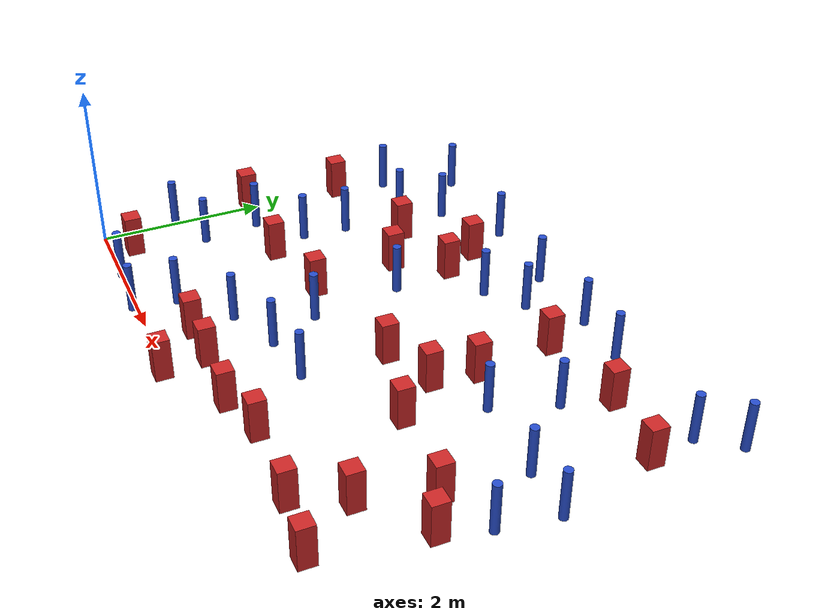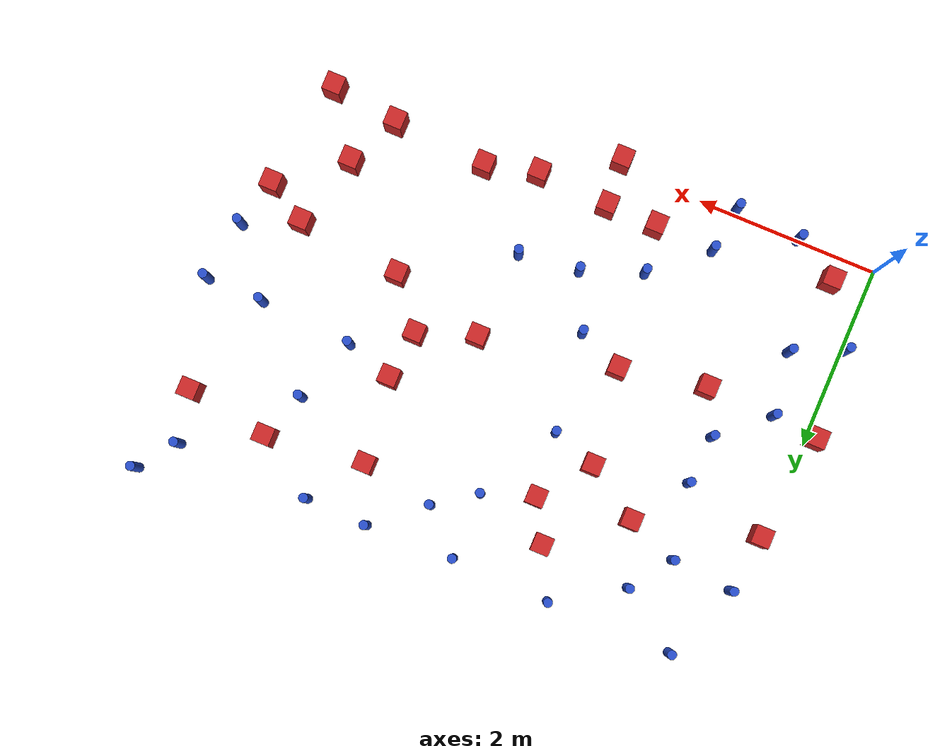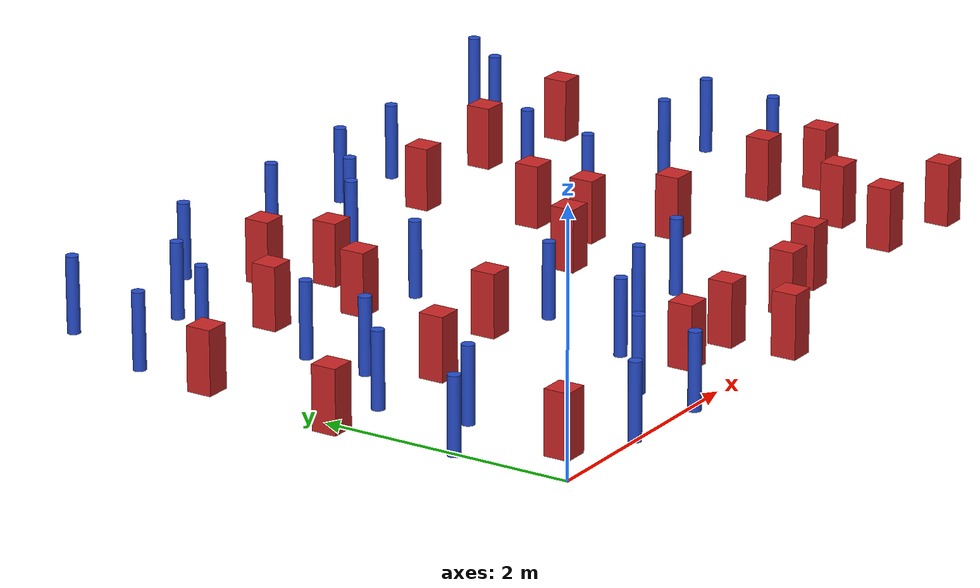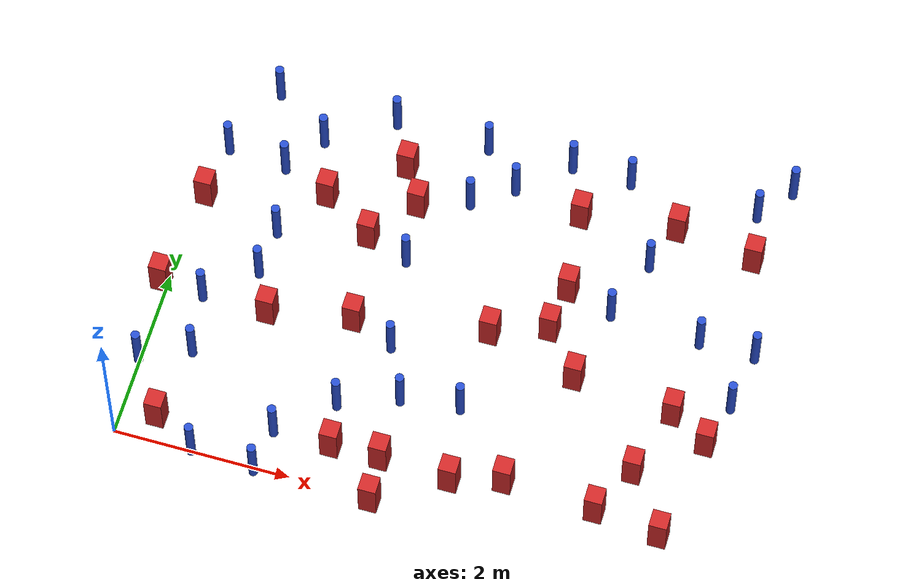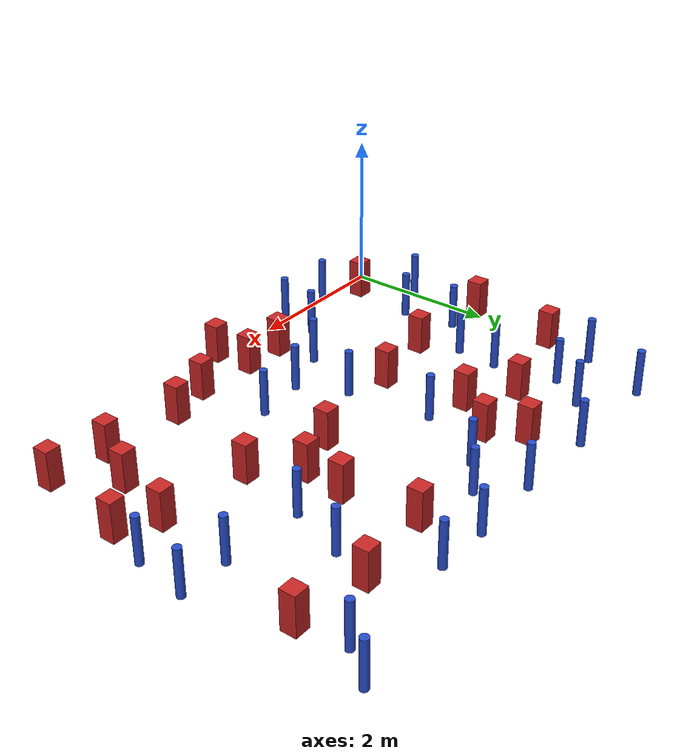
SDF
<sdf version="1.6">
 <model name="dense_70">
  <model name="square_post_obstacle1">
   <static>true</static>
   <pose>5.80485154844 1.86248550095 8.22691968438e-08 7.2212513382e-06 -7.54495500217e-07 2.29674213826e-05</pose>
   <link name="link">
    <pose>0 0 0.25 0 -0 0</pose>
    <inertial>
     <mass>100</mass>
     <inertia>
      <ixx>0.166667</ixx>
      <ixy>0</ixy>
      <ixz>0</ixz>
      <iyy>0.166667</iyy>
      <iyz>0</iyz>
      <izz>0.166667</izz>
     </inertia>
    </inertial>
    <collision name="collision"><geometry><box><size>.2 .2 .5</size></box></geometry></collision>
    <visual name="visual">
     <geometry><box><size>.2 .2 .5</size></box></geometry>
     <material>
      <script><name>Gazebo/Red</name><uri>file://media/materials/scripts/gazebo.material</uri></script>
     </material>
    </visual>
   </link>
  </model>
  <model name="pole_obstacle6">
   <static>true</static>
   <pose>1.87166272618 4.55720041785 2.88873142074e-08 -9.90536689852e-09 4.60219948989e-07 -1.2096599496e-07</pose>
   <link name="link">
    <pose>0 0 0.3 0 -0 0</pose>
    <inertial>
     <mass>1</mass>
     <inertia><ixx>0.145833</ixx><ixy>0</ixy><ixz>0</ixz><iyy>0.145833</iyy><iyz>0</iyz><izz>0.125</izz></inertia>
    </inertial>
    <collision name="collision">
     <geometry><cylinder><radius>0.05</radius><length>.6</length></cylinder></geometry>
    </collision>
    <visual name="visual">
     <geometry><cylinder><radius>0.05</radius><length>.6</length></cylinder></geometry>
     <material>
      <script><name>Gazebo/Blue</name><uri>file://media/materials/scripts/gazebo.material</uri></script>
     </material>
    </visual>
   </link>
  </model>
  <model name="pole_obstacle11">
   <static>true</static>
   <pose>2.61440782523 1.80878692361 2.88873142074e-08 -9.90536689395e-09 4.60219949e-07 -1.20965994953e-07</pose>
   <link name="link">
    <pose>0 0 0.3 0 -0 0</pose>
    <inertial>
     <mass>1</mass>
     <inertia><ixx>0.145833</ixx><ixy>0</ixy><ixz>0</ixz><iyy>0.145833</iyy><iyz>0</iyz><izz>0.125</izz></inertia>
    </inertial>
    <collision name="collision">
     <geometry><cylinder><radius>0.05</radius><length>.6</length></cylinder></geometry>
    </collision>
    <visual name="visual">
     <geometry><cylinder><radius>0.05</radius><length>.6</length></cylinder></geometry>
     <material>
      <script><name>Gazebo/Blue</name><uri>file://media/materials/scripts/gazebo.material</uri></script>
     </material>
    </visual>
   </link>
  </model>
  <model name="pole_obstacle16">
   <static>true</static>
   <pose>1.67860031516 0.463733786969 2.88873142074e-08 -9.90536689788e-09 4.6021994899e-07 -1.2096599496e-07</pose>
   <link name="link">
    <pose>0 0 0.3 0 -0 0</pose>
    <inertial>
     <mass>1</mass>
     <inertia><ixx>0.145833</ixx><ixy>0</ixy><ixz>0</ixz><iyy>0.145833</iyy><iyz>0</iyz><izz>0.125</izz></inertia>
    </inertial>
    <collision name="collision">
     <geometry><cylinder><radius>0.05</radius><length>.6</length></cylinder></geometry>
    </collision>
    <visual name="visual">
     <geometry><cylinder><radius>0.05</radius><length>.6</length></cylinder></geometry>
     <material>
      <script><name>Gazebo/Blue</name><uri>file://media/materials/scripts/gazebo.material</uri></script>
     </material>
    </visual>
   </link>
  </model>
  <model name="square_post_obstacle16">
   <static>true</static>
   <pose>1.39110884034 3.42909888853 8.22691968438e-08 7.2212513382e-06 -7.54495500217e-07 2.29674213826e-05</pose>
   <link name="link">
    <pose>0 0 0.25 0 -0 0</pose>
    <inertial>
     <mass>100</mass>
     <inertia>
      <ixx>0.166667</ixx>
      <ixy>0</ixy>
      <ixz>0</ixz>
      <iyy>0.166667</iyy>
      <iyz>0</iyz>
      <izz>0.166667</izz>
     </inertia>
    </inertial>
    <collision name="collision"><geometry><box><size>.2 .2 .5</size></box></geometry></collision>
    <visual name="visual">
     <geometry><box><size>.2 .2 .5</size></box></geometry>
     <material>
      <script><name>Gazebo/Red</name><uri>file://media/materials/scripts/gazebo.material</uri></script>
     </material>
    </visual>
   </link>
  </model>
  <model name="pole_obstacle25">
   <static>true</static>
   <pose>6.49631645876 2.79729808438 2.88873142074e-08 -9.90536690245e-09 4.6021994898e-07 -1.20965994966e-07</pose>
   <link name="link">
    <pose>0 0 0.3 0 -0 0</pose>
    <inertial>
     <mass>1</mass>
     <inertia><ixx>0.145833</ixx><ixy>0</ixy><ixz>0</ixz><iyy>0.145833</iyy><iyz>0</iyz><izz>0.125</izz></inertia>
    </inertial>
    <collision name="collision">
     <geometry><cylinder><radius>0.05</radius><length>.6</length></cylinder></geometry>
    </collision>
    <visual name="visual">
     <geometry><cylinder><radius>0.05</radius><length>.6</length></cylinder></geometry>
     <material>
      <script><name>Gazebo/Blue</name><uri>file://media/materials/scripts/gazebo.material</uri></script>
     </material>
    </visual>
   </link>
  </model>
  <model name="square_post_obstacle26">
   <static>true</static>
   <pose>4.25897662383 0.563208085032 8.22691968438e-08 7.2212513382e-06 -7.54495500217e-07 2.29674213826e-05</pose>
   <link name="link">
    <pose>0 0 0.25 0 -0 0</pose>
    <inertial>
     <mass>100</mass>
     <inertia>
      <ixx>0.166667</ixx>
      <ixy>0</ixy>
      <ixz>0</ixz>
      <iyy>0.166667</iyy>
      <iyz>0</iyz>
      <izz>0.166667</izz>
     </inertia>
    </inertial>
    <collision name="collision"><geometry><box><size>.2 .2 .5</size></box></geometry></collision>
    <visual name="visual">
     <geometry><box><size>.2 .2 .5</size></box></geometry>
     <material>
      <script><name>Gazebo/Red</name><uri>file://media/materials/scripts/gazebo.material</uri></script>
     </material>
    </visual>
   </link>
  </model>
  <model name="square_post_obstacle28">
   <static>true</static>
   <pose>0.403937300978 0.281757265774 8.22691968438e-08 7.2212513382e-06 -7.54495500217e-07 2.29674213826e-05</pose>
   <link name="link">
    <pose>0 0 0.25 0 -0 0</pose>
    <inertial>
     <mass>100</mass>
     <inertia>
      <ixx>0.166667</ixx>
      <ixy>0</ixy>
      <ixz>0</ixz>
      <iyy>0.166667</iyy>
      <iyz>0</iyz>
      <izz>0.166667</izz>
     </inertia>
    </inertial>
    <collision name="collision"><geometry><box><size>.2 .2 .5</size></box></geometry></collision>
    <visual name="visual">
     <geometry><box><size>.2 .2 .5</size></box></geometry>
     <material>
      <script><name>Gazebo/Red</name><uri>file://media/materials/scripts/gazebo.material</uri></script>
     </material>
    </visual>
   </link>
  </model>
  <model name="pole_obstacle36">
   <static>true</static>
   <pose>0.980874277172 2.83846772094 2.88873142074e-08 -9.90536689802e-09 4.6021994899e-07 -1.2096599496e-07</pose>
   <link name="link">
    <pose>0 0 0.3 0 -0 0</pose>
    <inertial>
     <mass>1</mass>
     <inertia><ixx>0.145833</ixx><ixy>0</ixy><ixz>0</ixz><iyy>0.145833</iyy><iyz>0</iyz><izz>0.125</izz></inertia>
    </inertial>
    <collision name="collision">
     <geometry><cylinder><radius>0.05</radius><length>.6</length></cylinder></geometry>
    </collision>
    <visual name="visual">
     <geometry><cylinder><radius>0.05</radius><length>.6</length></cylinder></geometry>
     <material>
      <script><name>Gazebo/Blue</name><uri>file://media/materials/scripts/gazebo.material</uri></script>
     </material>
    </visual>
   </link>
  </model>
  <model name="pole_obstacle37">
   <static>true</static>
   <pose>3.93220554547 4.55537312214 2.88873142074e-08 -9.90536689859e-09 4.60219948989e-07 -1.20965994961e-07</pose>
   <link name="link">
    <pose>0 0 0.3 0 -0 0</pose>
    <inertial>
     <mass>1</mass>
     <inertia><ixx>0.145833</ixx><ixy>0</ixy><ixz>0</ixz><iyy>0.145833</iyy><iyz>0</iyz><izz>0.125</izz></inertia>
    </inertial>
    <collision name="collision">
     <geometry><cylinder><radius>0.05</radius><length>.6</length></cylinder></geometry>
    </collision>
    <visual name="visual">
     <geometry><cylinder><radius>0.05</radius><length>.6</length></cylinder></geometry>
     <material>
      <script><name>Gazebo/Blue</name><uri>file://media/materials/scripts/gazebo.material</uri></script>
     </material>
    </visual>
   </link>
  </model>
  <model name="pole_obstacle38">
   <static>true</static>
   <pose>6.3942815201 4.9247850995 2.88873142074e-08 -9.90536690842e-09 4.60219948965e-07 -1.20965994976e-07</pose>
   <link name="link">
    <pose>0 0 0.3 0 -0 0</pose>
    <inertial>
     <mass>1</mass>
     <inertia><ixx>0.145833</ixx><ixy>0</ixy><ixz>0</ixz><iyy>0.145833</iyy><iyz>0</iyz><izz>0.125</izz></inertia>
    </inertial>
    <collision name="collision">
     <geometry><cylinder><radius>0.05</radius><length>.6</length></cylinder></geometry>
    </collision>
    <visual name="visual">
     <geometry><cylinder><radius>0.05</radius><length>.6</length></cylinder></geometry>
     <material>
      <script><name>Gazebo/Blue</name><uri>file://media/materials/scripts/gazebo.material</uri></script>
     </material>
    </visual>
   </link>
  </model>
  <model name="pole_obstacle46">
   <static>true</static>
   <pose>0.426810266464 1.84129543775 2.88873142074e-08 -9.90536689905e-09 4.60219948988e-07 -1.2096599496e-07</pose>
   <link name="link">
    <pose>0 0 0.3 0 -0 0</pose>
    <inertial>
     <mass>1</mass>
     <inertia><ixx>0.145833</ixx><ixy>0</ixy><ixz>0</ixz><iyy>0.145833</iyy><iyz>0</iyz><izz>0.125</izz></inertia>
    </inertial>
    <collision name="collision">
     <geometry><cylinder><radius>0.05</radius><length>.6</length></cylinder></geometry>
    </collision>
    <visual name="visual">
     <geometry><cylinder><radius>0.05</radius><length>.6</length></cylinder></geometry>
     <material>
      <script><name>Gazebo/Blue</name><uri>file://media/materials/scripts/gazebo.material</uri></script>
     </material>
    </visual>
   </link>
  </model>
  <model name="pole_obstacle55">
   <static>true</static>
   <pose>1.60711773701 -0.0452738911862 2.88873142074e-08 -9.90536689813e-09 4.6021994899e-07 -1.20965994959e-07</pose>
   <link name="link">
    <pose>0 0 0.3 0 -0 0</pose>
    <inertial>
     <mass>1</mass>
     <inertia><ixx>0.145833</ixx><ixy>0</ixy><ixz>0</ixz><iyy>0.145833</iyy><iyz>0</iyz><izz>0.125</izz></inertia>
    </inertial>
    <collision name="collision">
     <geometry><cylinder><radius>0.05</radius><length>.6</length></cylinder></geometry>
    </collision>
    <visual name="visual">
     <geometry><cylinder><radius>0.05</radius><length>.6</length></cylinder></geometry>
     <material>
      <script><name>Gazebo/Blue</name><uri>file://media/materials/scripts/gazebo.material</uri></script>
     </material>
    </visual>
   </link>
  </model>
  <model name="square_post_obstacle47">
   <static>true</static>
   <pose>5.29792968318 0.500472551045 8.22691968438e-08 7.2212513382e-06 -7.54495500217e-07 2.29674213826e-05</pose>
   <link name="link">
    <pose>0 0 0.25 0 -0 0</pose>
    <inertial>
     <mass>100</mass>
     <inertia>
      <ixx>0.166667</ixx>
      <ixy>0</ixy>
      <ixz>0</ixz>
      <iyy>0.166667</iyy>
      <iyz>0</iyz>
      <izz>0.166667</izz>
     </inertia>
    </inertial>
    <collision name="collision"><geometry><box><size>.2 .2 .5</size></box></geometry></collision>
    <visual name="visual">
     <geometry><box><size>.2 .2 .5</size></box></geometry>
     <material>
      <script><name>Gazebo/Red</name><uri>file://media/materials/scripts/gazebo.material</uri></script>
     </material>
    </visual>
   </link>
  </model>
  <model name="pole_obstacle65">
   <static>true</static>
   <pose>0.528404406386 1.1504723497 2.88873142074e-08 -9.90536690151e-09 4.60219948982e-07 -1.20965994965e-07</pose>
   <link name="link">
    <pose>0 0 0.3 0 -0 0</pose>
    <inertial>
     <mass>1</mass>
     <inertia><ixx>0.145833</ixx><ixy>0</ixy><ixz>0</ixz><iyy>0.145833</iyy><iyz>0</iyz><izz>0.125</izz></inertia>
    </inertial>
    <collision name="collision">
     <geometry><cylinder><radius>0.05</radius><length>.6</length></cylinder></geometry>
    </collision>
    <visual name="visual">
     <geometry><cylinder><radius>0.05</radius><length>.6</length></cylinder></geometry>
     <material>
      <script><name>Gazebo/Blue</name><uri>file://media/materials/scripts/gazebo.material</uri></script>
     </material>
    </visual>
   </link>
  </model>
  <model name="pole_obstacle70">
   <static>true</static>
   <pose>6.08183507549 4.52303860356 2.88873142074e-08 -9.90536690842e-09 4.60219948965e-07 -1.20965994976e-07</pose>
   <link name="link">
    <pose>0 0 0.3 0 -0 0</pose>
    <inertial>
     <mass>1</mass>
     <inertia><ixx>0.145833</ixx><ixy>0</ixy><ixz>0</ixz><iyy>0.145833</iyy><iyz>0</iyz><izz>0.125</izz></inertia>
    </inertial>
    <collision name="collision">
     <geometry><cylinder><radius>0.05</radius><length>.6</length></cylinder></geometry>
    </collision>
    <visual name="visual">
     <geometry><cylinder><radius>0.05</radius><length>.6</length></cylinder></geometry>
     <material>
      <script><name>Gazebo/Blue</name><uri>file://media/materials/scripts/gazebo.material</uri></script>
     </material>
    </visual>
   </link>
  </model>
  <model name="square_post_obstacle60">
   <static>true</static>
   <pose>1.98158617814 3.0543041788 8.22691968438e-08 7.2212513382e-06 -7.54495500217e-07 2.29674213826e-05</pose>
   <link name="link">
    <pose>0 0 0.25 0 -0 0</pose>
    <inertial>
     <mass>100</mass>
     <inertia>
      <ixx>0.166667</ixx>
      <ixy>0</ixy>
      <ixz>0</ixz>
      <iyy>0.166667</iyy>
      <iyz>0</iyz>
      <izz>0.166667</izz>
     </inertia>
    </inertial>
    <collision name="collision"><geometry><box><size>.2 .2 .5</size></box></geometry></collision>
    <visual name="visual">
     <geometry><box><size>.2 .2 .5</size></box></geometry>
     <material>
      <script><name>Gazebo/Red</name><uri>file://media/materials/scripts/gazebo.material</uri></script>
     </material>
    </visual>
   </link>
  </model>
  <model name="square_post_obstacle61">
   <static>true</static>
   <pose>4.30544268135 3.02421922106 8.22691968438e-08 7.2212513382e-06 -7.54495500217e-07 2.29674213826e-05</pose>
   <link name="link">
    <pose>0 0 0.25 0 -0 0</pose>
    <inertial>
     <mass>100</mass>
     <inertia>
      <ixx>0.166667</ixx>
      <ixy>0</ixy>
      <ixz>0</ixz>
      <iyy>0.166667</iyy>
      <iyz>0</iyz>
      <izz>0.166667</izz>
     </inertia>
    </inertial>
    <collision name="collision"><geometry><box><size>.2 .2 .5</size></box></geometry></collision>
    <visual name="visual">
     <geometry><box><size>.2 .2 .5</size></box></geometry>
     <material>
      <script><name>Gazebo/Red</name><uri>file://media/materials/scripts/gazebo.material</uri></script>
     </material>
    </visual>
   </link>
  </model>
  <model name="pole_obstacle71">
   <static>true</static>
   <pose>1.14897890635 4.10012739988 2.88873142074e-08 -9.90536689852e-09 4.60219948989e-07 -1.2096599496e-07</pose>
   <link name="link">
    <pose>0 0 0.3 0 -0 0</pose>
    <inertial>
     <mass>1</mass>
     <inertia><ixx>0.145833</ixx><ixy>0</ixy><ixz>0</ixz><iyy>0.145833</iyy><iyz>0</iyz><izz>0.125</izz></inertia>
    </inertial>
    <collision name="collision">
     <geometry><cylinder><radius>0.05</radius><length>.6</length></cylinder></geometry>
    </collision>
    <visual name="visual">
     <geometry><cylinder><radius>0.05</radius><length>.6</length></cylinder></geometry>
     <material>
      <script><name>Gazebo/Blue</name><uri>file://media/materials/scripts/gazebo.material</uri></script>
     </material>
    </visual>
   </link>
  </model>
  <model name="pole_obstacle76">
   <static>true</static>
   <pose>4.61547871797 4.53841228429 2.88873142074e-08 -9.90536690842e-09 4.60219948965e-07 -1.20965994976e-07</pose>
   <link name="link">
    <pose>0 0 0.3 0 -0 0</pose>
    <inertial>
     <mass>1</mass>
     <inertia><ixx>0.145833</ixx><ixy>0</ixy><ixz>0</ixz><iyy>0.145833</iyy><iyz>0</iyz><izz>0.125</izz></inertia>
    </inertial>
    <collision name="collision">
     <geometry><cylinder><radius>0.05</radius><length>.6</length></cylinder></geometry>
    </collision>
    <visual name="visual">
     <geometry><cylinder><radius>0.05</radius><length>.6</length></cylinder></geometry>
     <material>
      <script><name>Gazebo/Blue</name><uri>file://media/materials/scripts/gazebo.material</uri></script>
     </material>
    </visual>
   </link>
  </model>
  <model name="pole_obstacle77">
   <static>true</static>
   <pose>2.95366409807 3.78678568056 2.88873142074e-08 -9.90536690232e-09 4.6021994898e-07 -1.20965994968e-07</pose>
   <link name="link">
    <pose>0 0 0.3 0 -0 0</pose>
    <inertial>
     <mass>1</mass>
     <inertia><ixx>0.145833</ixx><ixy>0</ixy><ixz>0</ixz><iyy>0.145833</iyy><iyz>0</iyz><izz>0.125</izz></inertia>
    </inertial>
    <collision name="collision">
     <geometry><cylinder><radius>0.05</radius><length>.6</length></cylinder></geometry>
    </collision>
    <visual name="visual">
     <geometry><cylinder><radius>0.05</radius><length>.6</length></cylinder></geometry>
     <material>
      <script><name>Gazebo/Blue</name><uri>file://media/materials/scripts/gazebo.material</uri></script>
     </material>
    </visual>
   </link>
  </model>
  <model name="pole_obstacle81">
   <static>true</static>
   <pose>6.39610808806 2.12889983251 2.88873142074e-08 -9.90536690245e-09 4.6021994898e-07 -1.20965994966e-07</pose>
   <link name="link">
    <pose>0 0 0.3 0 -0 0</pose>
    <inertial>
     <mass>1</mass>
     <inertia><ixx>0.145833</ixx><ixy>0</ixy><ixz>0</ixz><iyy>0.145833</iyy><iyz>0</iyz><izz>0.125</izz></inertia>
    </inertial>
    <collision name="collision">
     <geometry><cylinder><radius>0.05</radius><length>.6</length></cylinder></geometry>
    </collision>
    <visual name="visual">
     <geometry><cylinder><radius>0.05</radius><length>.6</length></cylinder></geometry>
     <material>
      <script><name>Gazebo/Blue</name><uri>file://media/materials/scripts/gazebo.material</uri></script>
     </material>
    </visual>
   </link>
  </model>
  <model name="pole_obstacle84">
   <static>true</static>
   <pose>2.24804944506 0.963853311522 2.88873142074e-08 -9.90536689701e-09 4.60219948992e-07 -1.20965994959e-07</pose>
   <link name="link">
    <pose>0 0 0.3 0 -0 0</pose>
    <inertial>
     <mass>1</mass>
     <inertia><ixx>0.145833</ixx><ixy>0</ixy><ixz>0</ixz><iyy>0.145833</iyy><iyz>0</iyz><izz>0.125</izz></inertia>
    </inertial>
    <collision name="collision">
     <geometry><cylinder><radius>0.05</radius><length>.6</length></cylinder></geometry>
    </collision>
    <visual name="visual">
     <geometry><cylinder><radius>0.05</radius><length>.6</length></cylinder></geometry>
     <material>
      <script><name>Gazebo/Blue</name><uri>file://media/materials/scripts/gazebo.material</uri></script>
     </material>
    </visual>
   </link>
  </model>
  <model name="square_post_obstacle74">
   <static>true</static>
   <pose>2.9303197492 -0.0503939318438 8.22691968438e-08 7.2212513382e-06 -7.54495500217e-07 2.29674213826e-05</pose>
   <link name="link">
    <pose>0 0 0.25 0 -0 0</pose>
    <inertial>
     <mass>100</mass>
     <inertia>
      <ixx>0.166667</ixx>
      <ixy>0</ixy>
      <ixz>0</ixz>
      <iyy>0.166667</iyy>
      <iyz>0</iyz>
      <izz>0.166667</izz>
     </inertia>
    </inertial>
    <collision name="collision"><geometry><box><size>.2 .2 .5</size></box></geometry></collision>
    <visual name="visual">
     <geometry><box><size>.2 .2 .5</size></box></geometry>
     <material>
      <script><name>Gazebo/Red</name><uri>file://media/materials/scripts/gazebo.material</uri></script>
     </material>
    </visual>
   </link>
  </model>
  <model name="square_post_obstacle81">
   <static>true</static>
   <pose>6.18040757856 3.95391477961 8.22691968438e-08 7.2212513382e-06 -7.54495500217e-07 2.29674213826e-05</pose>
   <link name="link">
    <pose>0 0 0.25 0 -0 0</pose>
    <inertial>
     <mass>100</mass>
     <inertia>
      <ixx>0.166667</ixx>
      <ixy>0</ixy>
      <ixz>0</ixz>
      <iyy>0.166667</iyy>
      <iyz>0</iyz>
      <izz>0.166667</izz>
     </inertia>
    </inertial>
    <collision name="collision"><geometry><box><size>.2 .2 .5</size></box></geometry></collision>
    <visual name="visual">
     <geometry><box><size>.2 .2 .5</size></box></geometry>
     <material>
      <script><name>Gazebo/Red</name><uri>file://media/materials/scripts/gazebo.material</uri></script>
     </material>
    </visual>
   </link>
  </model>
  <model name="square_post_obstacle88">
   <static>true</static>
   <pose>2.3364033444 0.460191185488 8.22691968438e-08 7.2212513382e-06 -7.54495500217e-07 2.29674213826e-05</pose>
   <link name="link">
    <pose>0 0 0.25 0 -0 0</pose>
    <inertial>
     <mass>100</mass>
     <inertia>
      <ixx>0.166667</ixx>
      <ixy>0</ixy>
      <ixz>0</ixz>
      <iyy>0.166667</iyy>
      <iyz>0</iyz>
      <izz>0.166667</izz>
     </inertia>
    </inertial>
    <collision name="collision"><geometry><box><size>.2 .2 .5</size></box></geometry></collision>
    <visual name="visual">
     <geometry><box><size>.2 .2 .5</size></box></geometry>
     <material>
      <script><name>Gazebo/Red</name><uri>file://media/materials/scripts/gazebo.material</uri></script>
     </material>
    </visual>
   </link>
  </model>
  <model name="square_post_obstacle90">
   <static>true</static>
   <pose>2.12691441632 2.00725225635 8.22691968438e-08 7.2212513382e-06 -7.54495500217e-07 2.29674213826e-05</pose>
   <link name="link">
    <pose>0 0 0.25 0 -0 0</pose>
    <inertial>
     <mass>100</mass>
     <inertia>
      <ixx>0.166667</ixx>
      <ixy>0</ixy>
      <ixz>0</ixz>
      <iyy>0.166667</iyy>
      <iyz>0</iyz>
      <izz>0.166667</izz>
     </inertia>
    </inertial>
    <collision name="collision"><geometry><box><size>.2 .2 .5</size></box></geometry></collision>
    <visual name="visual">
     <geometry><box><size>.2 .2 .5</size></box></geometry>
     <material>
      <script><name>Gazebo/Red</name><uri>file://media/materials/scripts/gazebo.material</uri></script>
     </material>
    </visual>
   </link>
  </model>
  <model name="pole_obstacle101">
   <static>true</static>
   <pose>5.86614964058 2.80286822805 2.88873142074e-08 -9.90536690245e-09 4.6021994898e-07 -1.20965994966e-07</pose>
   <link name="link">
    <pose>0 0 0.3 0 -0 0</pose>
    <inertial>
     <mass>1</mass>
     <inertia><ixx>0.145833</ixx><ixy>0</ixy><ixz>0</ixz><iyy>0.145833</iyy><iyz>0</iyz><izz>0.125</izz></inertia>
    </inertial>
    <collision name="collision">
     <geometry><cylinder><radius>0.05</radius><length>.6</length></cylinder></geometry>
    </collision>
    <visual name="visual">
     <geometry><cylinder><radius>0.05</radius><length>.6</length></cylinder></geometry>
     <material>
      <script><name>Gazebo/Blue</name><uri>file://media/materials/scripts/gazebo.material</uri></script>
     </material>
    </visual>
   </link>
  </model>
  <model name="square_post_obstacle95">
   <static>true</static>
   <pose>4.2397135993 2.49239871041 8.22691968438e-08 7.2212513382e-06 -7.54495500217e-07 2.29674213826e-05</pose>
   <link name="link">
    <pose>0 0 0.25 0 -0 0</pose>
    <inertial>
     <mass>100</mass>
     <inertia>
      <ixx>0.166667</ixx>
      <ixy>0</ixy>
      <ixz>0</ixz>
      <iyy>0.166667</iyy>
      <iyz>0</iyz>
      <izz>0.166667</izz>
     </inertia>
    </inertial>
    <collision name="collision"><geometry><box><size>.2 .2 .5</size></box></geometry></collision>
    <visual name="visual">
     <geometry><box><size>.2 .2 .5</size></box></geometry>
     <material>
      <script><name>Gazebo/Red</name><uri>file://media/materials/scripts/gazebo.material</uri></script>
     </material>
    </visual>
   </link>
  </model>
  <model name="square_post_obstacle97">
   <static>true</static>
   <pose>2.40002460607 3.58926754957 8.22691968438e-08 7.2212513382e-06 -7.54495500217e-07 2.29674213826e-05</pose>
   <link name="link">
    <pose>0 0 0.25 0 -0 0</pose>
    <inertial>
     <mass>100</mass>
     <inertia>
      <ixx>0.166667</ixx>
      <ixy>0</ixy>
      <ixz>0</ixz>
      <iyy>0.166667</iyy>
      <iyz>0</iyz>
      <izz>0.166667</izz>
     </inertia>
    </inertial>
    <collision name="collision"><geometry><box><size>.2 .2 .5</size></box></geometry></collision>
    <visual name="visual">
     <geometry><box><size>.2 .2 .5</size></box></geometry>
     <material>
      <script><name>Gazebo/Red</name><uri>file://media/materials/scripts/gazebo.material</uri></script>
     </material>
    </visual>
   </link>
  </model>
  <model name="square_post_obstacle103">
   <static>true</static>
   <pose>0.0758553075731 3.07109637773 8.22691968438e-08 7.2212513382e-06 -7.54495500217e-07 2.29674213826e-05</pose>
   <link name="link">
    <pose>0 0 0.25 0 -0 0</pose>
    <inertial>
     <mass>100</mass>
     <inertia>
      <ixx>0.166667</ixx>
      <ixy>0</ixy>
      <ixz>0</ixz>
      <iyy>0.166667</iyy>
      <iyz>0</iyz>
      <izz>0.166667</izz>
     </inertia>
    </inertial>
    <collision name="collision"><geometry><box><size>.2 .2 .5</size></box></geometry></collision>
    <visual name="visual">
     <geometry><box><size>.2 .2 .5</size></box></geometry>
     <material>
      <script><name>Gazebo/Red</name><uri>file://media/materials/scripts/gazebo.material</uri></script>
     </material>
    </visual>
   </link>
  </model>
  <model name="pole_obstacle115">
   <static>true</static>
   <pose>3.39289770994 4.09941497682 2.88873142074e-08 -9.90536689859e-09 4.60219948989e-07 -1.20965994961e-07</pose>
   <link name="link">
    <pose>0 0 0.3 0 -0 0</pose>
    <inertial>
     <mass>1</mass>
     <inertia><ixx>0.145833</ixx><ixy>0</ixy><ixz>0</ixz><iyy>0.145833</iyy><iyz>0</iyz><izz>0.125</izz></inertia>
    </inertial>
    <collision name="collision">
     <geometry><cylinder><radius>0.05</radius><length>.6</length></cylinder></geometry>
    </collision>
    <visual name="visual">
     <geometry><cylinder><radius>0.05</radius><length>.6</length></cylinder></geometry>
     <material>
      <script><name>Gazebo/Blue</name><uri>file://media/materials/scripts/gazebo.material</uri></script>
     </material>
    </visual>
   </link>
  </model>
  <model name="pole_obstacle125">
   <static>true</static>
   <pose>0.8290730016 3.64934899208 2.88873142074e-08 -9.90536689636e-09 4.60219948994e-07 -1.20965994958e-07</pose>
   <link name="link">
    <pose>0 0 0.3 0 -0 0</pose>
    <inertial>
     <mass>1</mass>
     <inertia><ixx>0.145833</ixx><ixy>0</ixy><ixz>0</ixz><iyy>0.145833</iyy><iyz>0</iyz><izz>0.125</izz></inertia>
    </inertial>
    <collision name="collision">
     <geometry><cylinder><radius>0.05</radius><length>.6</length></cylinder></geometry>
    </collision>
    <visual name="visual">
     <geometry><cylinder><radius>0.05</radius><length>.6</length></cylinder></geometry>
     <material>
      <script><name>Gazebo/Blue</name><uri>file://media/materials/scripts/gazebo.material</uri></script>
     </material>
    </visual>
   </link>
  </model>
  <model name="pole_obstacle126">
   <static>true</static>
   <pose>3.56003813669 1.2931522656 2.88873142074e-08 -9.90536689395e-09 4.60219949e-07 -1.20965994953e-07</pose>
   <link name="link">
    <pose>0 0 0.3 0 -0 0</pose>
    <inertial>
     <mass>1</mass>
     <inertia><ixx>0.145833</ixx><ixy>0</ixy><ixz>0</ixz><iyy>0.145833</iyy><iyz>0</iyz><izz>0.125</izz></inertia>
    </inertial>
    <collision name="collision">
     <geometry><cylinder><radius>0.05</radius><length>.6</length></cylinder></geometry>
    </collision>
    <visual name="visual">
     <geometry><cylinder><radius>0.05</radius><length>.6</length></cylinder></geometry>
     <material>
      <script><name>Gazebo/Blue</name><uri>file://media/materials/scripts/gazebo.material</uri></script>
     </material>
    </visual>
   </link>
  </model>
  <model name="square_post_obstacle123">
   <static>true</static>
   <pose>4.65722926524 1.98467591924 8.22691968438e-08 7.2212513382e-06 -7.54495500217e-07 2.29674213826e-05</pose>
   <link name="link">
    <pose>0 0 0.25 0 -0 0</pose>
    <inertial>
     <mass>100</mass>
     <inertia>
      <ixx>0.166667</ixx>
      <ixy>0</ixy>
      <ixz>0</ixz>
      <iyy>0.166667</iyy>
      <iyz>0</iyz>
      <izz>0.166667</izz>
     </inertia>
    </inertial>
    <collision name="collision"><geometry><box><size>.2 .2 .5</size></box></geometry></collision>
    <visual name="visual">
     <geometry><box><size>.2 .2 .5</size></box></geometry>
     <material>
      <script><name>Gazebo/Red</name><uri>file://media/materials/scripts/gazebo.material</uri></script>
     </material>
    </visual>
   </link>
  </model>
  <model name="square_post_obstacle130">
   <static>true</static>
   <pose>4.19129608054 3.95977043679 8.22691968438e-08 7.2212513382e-06 -7.54495500217e-07 2.29674213826e-05</pose>
   <link name="link">
    <pose>0 0 0.25 0 -0 0</pose>
    <inertial>
     <mass>100</mass>
     <inertia>
      <ixx>0.166667</ixx>
      <ixy>0</ixy>
      <ixz>0</ixz>
      <iyy>0.166667</iyy>
      <iyz>0</iyz>
      <izz>0.166667</izz>
     </inertia>
    </inertial>
    <collision name="collision"><geometry><box><size>.2 .2 .5</size></box></geometry></collision>
    <visual name="visual">
     <geometry><box><size>.2 .2 .5</size></box></geometry>
     <material>
      <script><name>Gazebo/Red</name><uri>file://media/materials/scripts/gazebo.material</uri></script>
     </material>
    </visual>
   </link>
  </model>
  <model name="pole_obstacle136">
   <static>true</static>
   <pose>0.147412542536 3.71269143134 2.88873142074e-08 -9.90536692387e-09 4.60219948929e-07 -1.20965994988e-07</pose>
   <link name="link">
    <pose>0 0 0.3 0 -0 0</pose>
    <inertial>
     <mass>1</mass>
     <inertia><ixx>0.145833</ixx><ixy>0</ixy><ixz>0</ixz><iyy>0.145833</iyy><iyz>0</iyz><izz>0.125</izz></inertia>
    </inertial>
    <collision name="collision">
     <geometry><cylinder><radius>0.05</radius><length>.6</length></cylinder></geometry>
    </collision>
    <visual name="visual">
     <geometry><cylinder><radius>0.05</radius><length>.6</length></cylinder></geometry>
     <material>
      <script><name>Gazebo/Blue</name><uri>file://media/materials/scripts/gazebo.material</uri></script>
     </material>
    </visual>
   </link>
  </model>
  <model name="pole_obstacle141">
   <static>true</static>
   <pose>5.08723154522 3.5767548894 2.88873142074e-08 -9.90536690245e-09 4.6021994898e-07 -1.20965994966e-07</pose>
   <link name="link">
    <pose>0 0 0.3 0 -0 0</pose>
    <inertial>
     <mass>1</mass>
     <inertia><ixx>0.145833</ixx><ixy>0</ixy><ixz>0</ixz><iyy>0.145833</iyy><iyz>0</iyz><izz>0.125</izz></inertia>
    </inertial>
    <collision name="collision">
     <geometry><cylinder><radius>0.05</radius><length>.6</length></cylinder></geometry>
    </collision>
    <visual name="visual">
     <geometry><cylinder><radius>0.05</radius><length>.6</length></cylinder></geometry>
     <material>
      <script><name>Gazebo/Blue</name><uri>file://media/materials/scripts/gazebo.material</uri></script>
     </material>
    </visual>
   </link>
  </model>
  <model name="pole_obstacle145">
   <static>true</static>
   <pose>0.939317445899 2.29628000381 2.88873142074e-08 -9.90536689636e-09 4.60219948994e-07 -1.20965994958e-07</pose>
   <link name="link">
    <pose>0 0 0.3 0 -0 0</pose>
    <inertial>
     <mass>1</mass>
     <inertia><ixx>0.145833</ixx><ixy>0</ixy><ixz>0</ixz><iyy>0.145833</iyy><iyz>0</iyz><izz>0.125</izz></inertia>
    </inertial>
    <collision name="collision">
     <geometry><cylinder><radius>0.05</radius><length>.6</length></cylinder></geometry>
    </collision>
    <visual name="visual">
     <geometry><cylinder><radius>0.05</radius><length>.6</length></cylinder></geometry>
     <material>
      <script><name>Gazebo/Blue</name><uri>file://media/materials/scripts/gazebo.material</uri></script>
     </material>
    </visual>
   </link>
  </model>
  <model name="square_post_obstacle145">
   <static>true</static>
   <pose>6.24670654416 1.60676971156 8.22691968438e-08 7.2212513382e-06 -7.54495500217e-07 2.29674213826e-05</pose>
   <link name="link">
    <pose>0 0 0.25 0 -0 0</pose>
    <inertial>
     <mass>100</mass>
     <inertia>
      <ixx>0.166667</ixx>
      <ixy>0</ixy>
      <ixz>0</ixz>
      <iyy>0.166667</iyy>
      <iyz>0</iyz>
      <izz>0.166667</izz>
     </inertia>
    </inertial>
    <collision name="collision"><geometry><box><size>.2 .2 .5</size></box></geometry></collision>
    <visual name="visual">
     <geometry><box><size>.2 .2 .5</size></box></geometry>
     <material>
      <script><name>Gazebo/Red</name><uri>file://media/materials/scripts/gazebo.material</uri></script>
     </material>
    </visual>
   </link>
  </model>
  <model name="pole_obstacle153">
   <static>true</static>
   <pose>4.83654097965 2.86497568425 2.88873142074e-08 -9.90536690245e-09 4.6021994898e-07 -1.20965994966e-07</pose>
   <link name="link">
    <pose>0 0 0.3 0 -0 0</pose>
    <inertial>
     <mass>1</mass>
     <inertia><ixx>0.145833</ixx><ixy>0</ixy><ixz>0</ixz><iyy>0.145833</iyy><iyz>0</iyz><izz>0.125</izz></inertia>
    </inertial>
    <collision name="collision">
     <geometry><cylinder><radius>0.05</radius><length>.6</length></cylinder></geometry>
    </collision>
    <visual name="visual">
     <geometry><cylinder><radius>0.05</radius><length>.6</length></cylinder></geometry>
     <material>
      <script><name>Gazebo/Blue</name><uri>file://media/materials/scripts/gazebo.material</uri></script>
     </material>
    </visual>
   </link>
  </model>
  <model name="pole_obstacle163">
   <static>true</static>
   <pose>2.89725983626 1.21169664269 2.88873142074e-08 -9.90536689395e-09 4.60219949e-07 -1.20965994953e-07</pose>
   <link name="link">
    <pose>0 0 0.3 0 -0 0</pose>
    <inertial>
     <mass>1</mass>
     <inertia><ixx>0.145833</ixx><ixy>0</ixy><ixz>0</ixz><iyy>0.145833</iyy><iyz>0</iyz><izz>0.125</izz></inertia>
    </inertial>
    <collision name="collision">
     <geometry><cylinder><radius>0.05</radius><length>.6</length></cylinder></geometry>
    </collision>
    <visual name="visual">
     <geometry><cylinder><radius>0.05</radius><length>.6</length></cylinder></geometry>
     <material>
      <script><name>Gazebo/Blue</name><uri>file://media/materials/scripts/gazebo.material</uri></script>
     </material>
    </visual>
   </link>
  </model>
  <model name="square_post_obstacle154">
   <static>true</static>
   <pose>6.04003852589 0.407985000945 8.22691968438e-08 7.2212513382e-06 -7.54495500217e-07 2.29674213826e-05</pose>
   <link name="link">
    <pose>0 0 0.25 0 -0 0</pose>
    <inertial>
     <mass>100</mass>
     <inertia>
      <ixx>0.166667</ixx>
      <ixy>0</ixy>
      <ixz>0</ixz>
      <iyy>0.166667</iyy>
      <iyz>0</iyz>
      <izz>0.166667</izz>
     </inertia>
    </inertial>
    <collision name="collision"><geometry><box><size>.2 .2 .5</size></box></geometry></collision>
    <visual name="visual">
     <geometry><box><size>.2 .2 .5</size></box></geometry>
     <material>
      <script><name>Gazebo/Red</name><uri>file://media/materials/scripts/gazebo.material</uri></script>
     </material>
    </visual>
   </link>
  </model>
  <model name="square_post_obstacle164">
   <static>true</static>
   <pose>5.27190050154 4.0939122659 8.22691968438e-08 7.22125133819e-06 -7.54495500217e-07 2.29674213826e-05</pose>
   <link name="link">
    <pose>0 0 0.25 0 -0 0</pose>
    <inertial>
     <mass>100</mass>
     <inertia>
      <ixx>0.166667</ixx>
      <ixy>0</ixy>
      <ixz>0</ixz>
      <iyy>0.166667</iyy>
      <iyz>0</iyz>
      <izz>0.166667</izz>
     </inertia>
    </inertial>
    <collision name="collision"><geometry><box><size>.2 .2 .5</size></box></geometry></collision>
    <visual name="visual">
     <geometry><box><size>.2 .2 .5</size></box></geometry>
     <material>
      <script><name>Gazebo/Red</name><uri>file://media/materials/scripts/gazebo.material</uri></script>
     </material>
    </visual>
   </link>
  </model>
  <model name="pole_obstacle169">
   <static>true</static>
   <pose>2.46897220637 2.88723407965 2.88873142074e-08 -9.90536690232e-09 4.6021994898e-07 -1.20965994968e-07</pose>
   <link name="link">
    <pose>0 0 0.3 0 -0 0</pose>
    <inertial>
     <mass>1</mass>
     <inertia><ixx>0.145833</ixx><ixy>0</ixy><ixz>0</ixz><iyy>0.145833</iyy><iyz>0</iyz><izz>0.125</izz></inertia>
    </inertial>
    <collision name="collision">
     <geometry><cylinder><radius>0.05</radius><length>.6</length></cylinder></geometry>
    </collision>
    <visual name="visual">
     <geometry><cylinder><radius>0.05</radius><length>.6</length></cylinder></geometry>
     <material>
      <script><name>Gazebo/Blue</name><uri>file://media/materials/scripts/gazebo.material</uri></script>
     </material>
    </visual>
   </link>
  </model>
  <model name="square_post_obstacle189">
   <static>true</static>
   <pose>3.61711459999 2.26835882462 8.22691968438e-08 7.2212513382e-06 -7.54495500217e-07 2.29674213826e-05</pose>
   <link name="link">
    <pose>0 0 0.25 0 -0 0</pose>
    <inertial>
     <mass>100</mass>
     <inertia>
      <ixx>0.166667</ixx>
      <ixy>0</ixy>
      <ixz>0</ixz>
      <iyy>0.166667</iyy>
      <iyz>0</iyz>
      <izz>0.166667</izz>
     </inertia>
    </inertial>
    <collision name="collision"><geometry><box><size>.2 .2 .5</size></box></geometry></collision>
    <visual name="visual">
     <geometry><box><size>.2 .2 .5</size></box></geometry>
     <material>
      <script><name>Gazebo/Red</name><uri>file://media/materials/scripts/gazebo.material</uri></script>
     </material>
    </visual>
   </link>
  </model>
  <model name="square_post_obstacle202">
   <static>true</static>
   <pose>3.69123090719 0.415777763954 8.22691968438e-08 7.2212513382e-06 -7.54495500217e-07 2.29674213826e-05</pose>
   <link name="link">
    <pose>0 0 0.25 0 -0 0</pose>
    <inertial>
     <mass>100</mass>
     <inertia>
      <ixx>0.166667</ixx>
      <ixy>0</ixy>
      <ixz>0</ixz>
      <iyy>0.166667</iyy>
      <iyz>0</iyz>
      <izz>0.166667</izz>
     </inertia>
    </inertial>
    <collision name="collision"><geometry><box><size>.2 .2 .5</size></box></geometry></collision>
    <visual name="visual">
     <geometry><box><size>.2 .2 .5</size></box></geometry>
     <material>
      <script><name>Gazebo/Red</name><uri>file://media/materials/scripts/gazebo.material</uri></script>
     </material>
    </visual>
   </link>
  </model>
  <model name="pole_obstacle201">
   <static>true</static>
   <pose>0.492317675474 4.55832835213 2.88873142074e-08 -9.90536689616e-09 4.60219948994e-07 -1.20965994955e-07</pose>
   <link name="link">
    <pose>0 0 0.3 0 -0 0</pose>
    <inertial>
     <mass>1</mass>
     <inertia><ixx>0.145833</ixx><ixy>0</ixy><ixz>0</ixz><iyy>0.145833</iyy><iyz>0</iyz><izz>0.125</izz></inertia>
    </inertial>
    <collision name="collision">
     <geometry><cylinder><radius>0.05</radius><length>.6</length></cylinder></geometry>
    </collision>
    <visual name="visual">
     <geometry><cylinder><radius>0.05</radius><length>.6</length></cylinder></geometry>
     <material>
      <script><name>Gazebo/Blue</name><uri>file://media/materials/scripts/gazebo.material</uri></script>
     </material>
    </visual>
   </link>
  </model>
  <model name="square_post_obstacle210">
   <static>true</static>
   <pose>-0.0713832827327 1.89626711512 8.22691968438e-08 7.2212513382e-06 -7.54495500217e-07 2.29674213826e-05</pose>
   <link name="link">
    <pose>0 0 0.25 0 -0 0</pose>
    <inertial>
     <mass>100</mass>
     <inertia>
      <ixx>0.166667</ixx>
      <ixy>0</ixy>
      <ixz>0</ixz>
      <iyy>0.166667</iyy>
      <iyz>0</iyz>
      <izz>0.166667</izz>
     </inertia>
    </inertial>
    <collision name="collision"><geometry><box><size>.2 .2 .5</size></box></geometry></collision>
    <visual name="visual">
     <geometry><box><size>.2 .2 .5</size></box></geometry>
     <material>
      <script><name>Gazebo/Red</name><uri>file://media/materials/scripts/gazebo.material</uri></script>
     </material>
    </visual>
   </link>
  </model>
  <model name="square_post_obstacle211">
   <static>true</static>
   <pose>1.18432993403 1.83299374803 8.22691968438e-08 7.2212513382e-06 -7.54495500217e-07 2.29674213826e-05</pose>
   <link name="link">
    <pose>0 0 0.25 0 -0 0</pose>
    <inertial>
     <mass>100</mass>
     <inertia>
      <ixx>0.166667</ixx>
      <ixy>0</ixy>
      <ixz>0</ixz>
      <iyy>0.166667</iyy>
      <iyz>0</iyz>
      <izz>0.166667</izz>
     </inertia>
    </inertial>
    <collision name="collision"><geometry><box><size>.2 .2 .5</size></box></geometry></collision>
    <visual name="visual">
     <geometry><box><size>.2 .2 .5</size></box></geometry>
     <material>
      <script><name>Gazebo/Red</name><uri>file://media/materials/scripts/gazebo.material</uri></script>
     </material>
    </visual>
   </link>
  </model>
  <model name="square_post_obstacle212">
   <static>true</static>
   <pose>2.89285750543 0.459291063571 8.22691968438e-08 7.2212513382e-06 -7.54495500217e-07 2.29674213826e-05</pose>
   <link name="link">
    <pose>0 0 0.25 0 -0 0</pose>
    <inertial>
     <mass>100</mass>
     <inertia>
      <ixx>0.166667</ixx>
      <ixy>0</ixy>
      <ixz>0</ixz>
      <iyy>0.166667</iyy>
      <iyz>0</iyz>
      <izz>0.166667</izz>
     </inertia>
    </inertial>
    <collision name="collision"><geometry><box><size>.2 .2 .5</size></box></geometry></collision>
    <visual name="visual">
     <geometry><box><size>.2 .2 .5</size></box></geometry>
     <material>
      <script><name>Gazebo/Red</name><uri>file://media/materials/scripts/gazebo.material</uri></script>
     </material>
    </visual>
   </link>
  </model>
  <model name="square_post_obstacle214">
   <static>true</static>
   <pose>2.15258936473 4.0271645349 8.22691968438e-08 7.22125133819e-06 -7.54495500217e-07 2.29674213826e-05</pose>
   <link name="link">
    <pose>0 0 0.25 0 -0 0</pose>
    <inertial>
     <mass>100</mass>
     <inertia>
      <ixx>0.166667</ixx>
      <ixy>0</ixy>
      <ixz>0</ixz>
      <iyy>0.166667</iyy>
      <iyz>0</iyz>
      <izz>0.166667</izz>
     </inertia>
    </inertial>
    <collision name="collision"><geometry><box><size>.2 .2 .5</size></box></geometry></collision>
    <visual name="visual">
     <geometry><box><size>.2 .2 .5</size></box></geometry>
     <material>
      <script><name>Gazebo/Red</name><uri>file://media/materials/scripts/gazebo.material</uri></script>
     </material>
    </visual>
   </link>
  </model>
  <model name="square_post_obstacle215">
   <static>true</static>
   <pose>5.57343220372 1.06484299526 8.22691968438e-08 7.2212513382e-06 -7.54495500217e-07 2.29674213826e-05</pose>
   <link name="link">
    <pose>0 0 0.25 0 -0 0</pose>
    <inertial>
     <mass>100</mass>
     <inertia>
      <ixx>0.166667</ixx>
      <ixy>0</ixy>
      <ixz>0</ixz>
      <iyy>0.166667</iyy>
      <iyz>0</iyz>
      <izz>0.166667</izz>
     </inertia>
    </inertial>
    <collision name="collision"><geometry><box><size>.2 .2 .5</size></box></geometry></collision>
    <visual name="visual">
     <geometry><box><size>.2 .2 .5</size></box></geometry>
     <material>
      <script><name>Gazebo/Red</name><uri>file://media/materials/scripts/gazebo.material</uri></script>
     </material>
    </visual>
   </link>
  </model>
  <model name="pole_obstacle208">
   <static>true</static>
   <pose>2.9575882531 4.52290290336 2.88873142074e-08 -9.90536689859e-09 4.60219948989e-07 -1.20965994961e-07</pose>
   <link name="link">
    <pose>0 0 0.3 0 -0 0</pose>
    <inertial>
     <mass>1</mass>
     <inertia><ixx>0.145833</ixx><ixy>0</ixy><ixz>0</ixz><iyy>0.145833</iyy><iyz>0</iyz><izz>0.125</izz></inertia>
    </inertial>
    <collision name="collision">
     <geometry><cylinder><radius>0.05</radius><length>.6</length></cylinder></geometry>
    </collision>
    <visual name="visual">
     <geometry><cylinder><radius>0.05</radius><length>.6</length></cylinder></geometry>
     <material>
      <script><name>Gazebo/Blue</name><uri>file://media/materials/scripts/gazebo.material</uri></script>
     </material>
    </visual>
   </link>
  </model>
  <model name="pole_obstacle213">
   <static>true</static>
   <pose>-0.0179809908671 0.909252020412 2.88873142074e-08 -9.90536690235e-09 4.6021994898e-07 -1.20965994967e-07</pose>
   <link name="link">
    <pose>0 0 0.3 0 -0 0</pose>
    <inertial>
     <mass>1</mass>
     <inertia><ixx>0.145833</ixx><ixy>0</ixy><ixz>0</ixz><iyy>0.145833</iyy><iyz>0</iyz><izz>0.125</izz></inertia>
    </inertial>
    <collision name="collision">
     <geometry><cylinder><radius>0.05</radius><length>.6</length></cylinder></geometry>
    </collision>
    <visual name="visual">
     <geometry><cylinder><radius>0.05</radius><length>.6</length></cylinder></geometry>
     <material>
      <script><name>Gazebo/Blue</name><uri>file://media/materials/scripts/gazebo.material</uri></script>
     </material>
    </visual>
   </link>
  </model>
  <model name="pole_obstacle216">
   <static>true</static>
   <pose>0.884273009133 0.00281602041235 2.88873142074e-08 -9.90536689873e-09 4.60219948988e-07 -1.20965994961e-07</pose>
   <link name="link">
    <pose>0 0 0.3 0 -0 0</pose>
    <inertial>
     <mass>1</mass>
     <inertia><ixx>0.145833</ixx><ixy>0</ixy><ixz>0</ixz><iyy>0.145833</iyy><iyz>0</iyz><izz>0.125</izz></inertia>
    </inertial>
    <collision name="collision">
     <geometry><cylinder><radius>0.05</radius><length>.6</length></cylinder></geometry>
    </collision>
    <visual name="visual">
     <geometry><cylinder><radius>0.05</radius><length>.6</length></cylinder></geometry>
     <material>
      <script><name>Gazebo/Blue</name><uri>file://media/materials/scripts/gazebo.material</uri></script>
     </material>
    </visual>
   </link>
  </model>
 </model>
</sdf>
